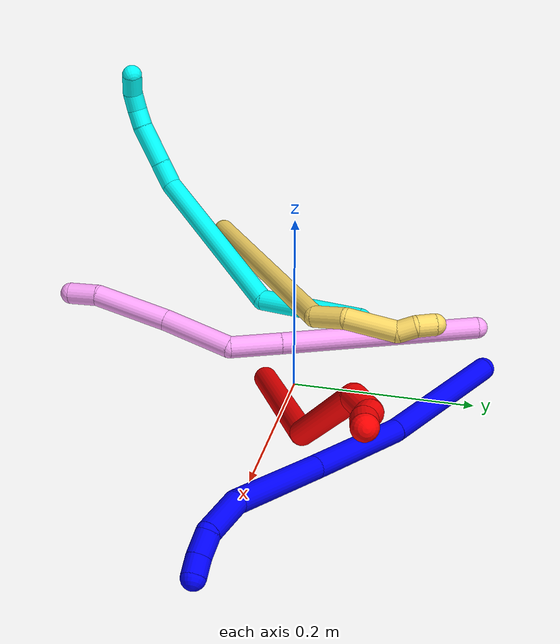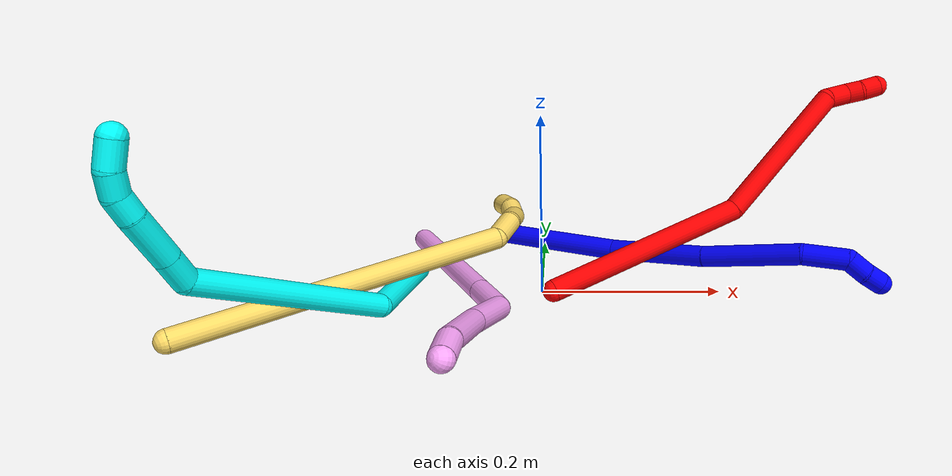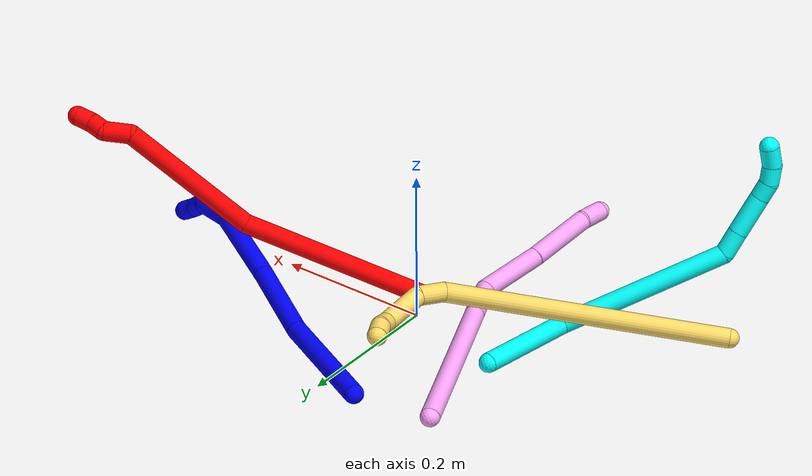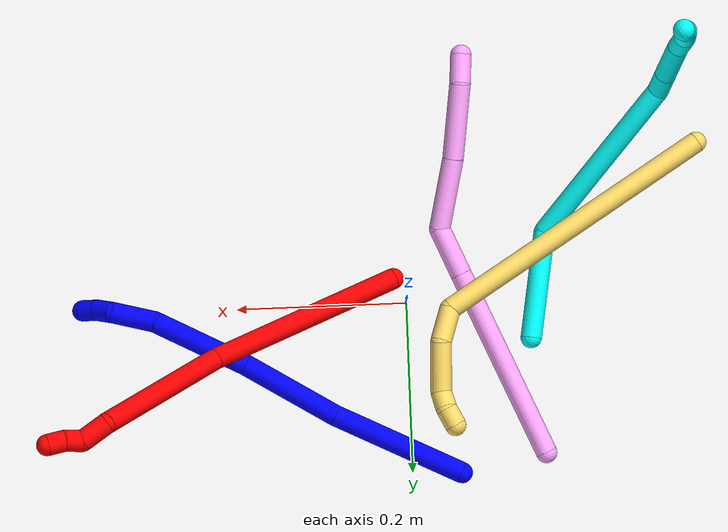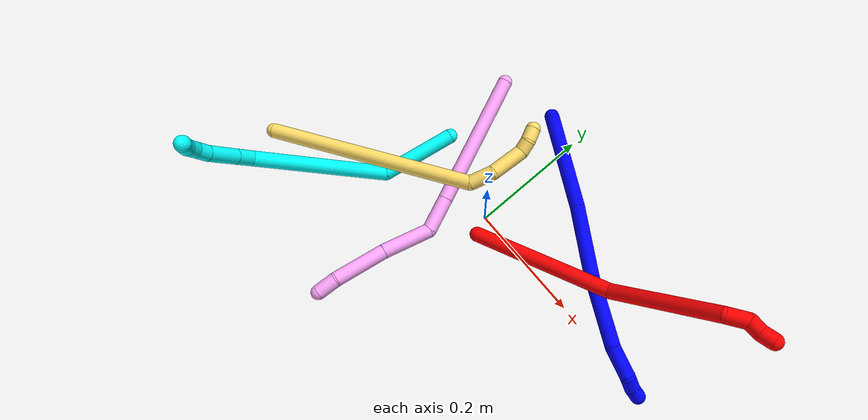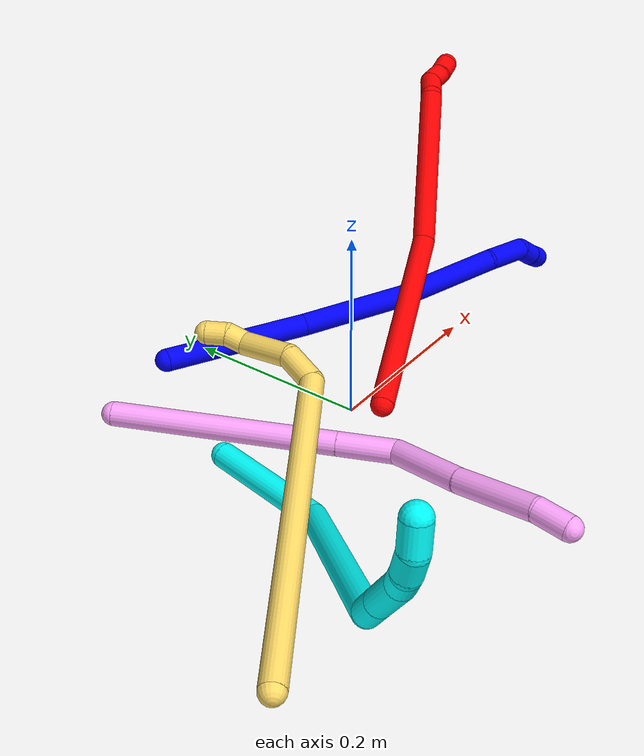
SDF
<sdf version="1.7">
 <world name="default">
  <plugin name="TubeGeneratorPlugin" filename="libtube_generator_plugin.so"/>
  <model name="photoneo_s_sensor">
   <static>1</static>
   <pose>0 0 2 1.57079 1.57079 3.14159</pose>
   <link name="link">
    <inertial><mass>0.1</mass></inertial>
    <sensor name="sensor" type="depth">
     <update_rate>30</update_rate>
     <camera>
      <horizontal_fov>1.22</horizontal_fov>
      <image><width>1920</width><height>1200</height><format>B8G8R8</format></image>
      <clip><near>0.1</near><far>4</far></clip>
      <depth_camera><output>points</output></depth_camera>
     </camera>
     <plugin name="camera_plugin" filename="libgazebo_ros_depth_camera.so">
      <baseline>0.2</baseline>
      <alwaysOn>1</alwaysOn>
      <updateRate>0.0</updateRate>
      <cameraName>camera_ir</cameraName>
      <imageTopicName>/camera/color/image_raw</imageTopicName>
      <cameraInfoTopicName>/camera/color/camera_info</cameraInfoTopicName>
      <depthImageTopicName>/camera/depth/image_raw</depthImageTopicName>
      <depthImageCameraInfoTopicName>/camera/depth/camera_info</depthImageCameraInfoTopicName>
      <pointCloudTopicName>/camera/depth/points</pointCloudTopicName>
      <frameName>fr_optical</frameName>
      <pointCloudCutoff>0.1</pointCloudCutoff>
      <pointCloudCutoffMax>2.0</pointCloudCutoffMax>
      <distortionK1>0</distortionK1>
      <distortionK2>0</distortionK2>
      <distortionK3>0</distortionK3>
      <distortionT1>0</distortionT1>
      <distortionT2>0</distortionT2>
      <CxPrime>0</CxPrime>
      <Cx>0</Cx>
      <Cy>0</Cy>
      <focalLength>0</focalLength>
      <hackBaseline>0</hackBaseline>
     </plugin>
    </sensor>
   </link>
  </model>
  <gravity>0 0 -9.8</gravity>
  <magnetic_field>6e-06 2.3e-05 -4.2e-05</magnetic_field>
  <atmosphere type="adiabatic"/>
  <physics name="default_physics" default="0" type="ode">
   <max_step_size>0.003</max_step_size>
   <real_time_factor>1</real_time_factor>
   <real_time_update_rate>1000</real_time_update_rate>
   <max_contacts>10000</max_contacts>
   <ode>
    <solver>
     <type>quick</type>
     <iters>100</iters>
     <sor>1.3</sor>
     <use_dynamic_moi_rescaling>0</use_dynamic_moi_rescaling>
    </solver>
    <constraints>
     <contact_max_correcting_vel>0</contact_max_correcting_vel>
     <contact_surface_layer>0.001</contact_surface_layer>
     <cfm>0</cfm>
     <erp>0.2</erp>
    </constraints>
   </ode>
  </physics>
  <scene><ambient>0.4 0.4 0.4 1</ambient><background>0.7 0.7 0.7 1</background><shadows>0</shadows></scene>
  <audio><device>default</device></audio>
  <spherical_coordinates>
   <surface_model>EARTH_WGS84</surface_model>
   <latitude_deg>0</latitude_deg>
   <longitude_deg>0</longitude_deg>
   <elevation>0</elevation>
   <heading_deg>0</heading_deg>
  </spherical_coordinates>
  <model name="bin">
   <static>1</static>
   <link name="bottom">
    <collision name="collision-bottom">
     <pose>0 0 -0.01 0 -0 0</pose>
     <geometry><box><size>0.8 0.6 0.02</size></box></geometry>
     <surface>
      <friction><ode><mu>100</mu><mu2>100</mu2></ode></friction>
      <contact><collide_bitmask>65535</collide_bitmask></contact>
     </surface>
    </collision>
   </link>
   <link name="west_wall">
    <collision name="collision-west_wall">
     <pose>-0.41 0 0.1 0 -0 0</pose>
     <geometry><box><size>0.02 0.6 0.2</size></box></geometry>
     <surface>
      <friction><ode><mu>100</mu><mu2>100</mu2></ode></friction>
      <contact><collide_bitmask>65535</collide_bitmask></contact>
     </surface>
    </collision>
   </link>
   <link name="east_wall">
    <collision name="collision-east_wall">
     <pose>0.41 0 0.1 0 -0 0</pose>
     <geometry><box><size>0.02 0.6 0.2</size></box></geometry>
     <surface>
      <friction><ode><mu>100</mu><mu2>100</mu2></ode></friction>
      <contact><collide_bitmask>65535</collide_bitmask></contact>
     </surface>
    </collision>
   </link>
   <link name="south_wall">
    <collision name="collision-south_wall">
     <pose>0 -0.31 0.1 0 -0 0</pose>
     <geometry><box><size>0.8 0.02 0.2</size></box></geometry>
     <surface>
      <friction><ode><mu>100</mu><mu2>100</mu2></ode></friction>
      <contact><collide_bitmask>65535</collide_bitmask></contact>
     </surface>
    </collision>
   </link>
   <link name="north_wall">
    <collision name="collision-north_wall">
     <pose>0 0.31 0.1 0 -0 0</pose>
     <geometry><box><size>0.8 0.02 0.2</size></box></geometry>
     <surface>
      <friction><ode><mu>100</mu><mu2>100</mu2></ode></friction>
      <contact><collide_bitmask>65535</collide_bitmask></contact>
     </surface>
    </collision>
   </link>
  </model>
  <model name="1">
   <static>0</static>
   <link name="1">
    <collision name="collision-cylinder-e_1_1_4">
     <pose>0.050832 -0.016941 0.061844 0.267375 0.670291 0.093613</pose>
     <geometry><cylinder><radius>0.0125</radius><length>0.163653</length></cylinder></geometry>
     <surface>
      <friction><ode><mu>1.16</mu><mu2>1.16</mu2><slip1>0</slip1><slip2>0</slip2></ode></friction>
      <contact><ode><kp>1e+06</kp><kd>1</kd><max_vel>0</max_vel><min_depth>0.001</min_depth></ode></contact>
     </surface>
    </collision>
    <visual name="visual-cylinder-e_1_1_4">
     <pose>0.050832 -0.016941 0.061844 0.267375 0.670291 0.093613</pose>
     <geometry><cylinder><radius>0.0125</radius><length>0.163653</length></cylinder></geometry>
     <material><ambient>0 0 1 1</ambient></material>
    </visual>
    <collision name="collision-cylinder-e_2_4_5">
     <pose>0.145249 -0.048036 0.16416 0.336415 0.793619 0.142076</pose>
     <geometry><cylinder><radius>0.0125</radius><length>0.122277</length></cylinder></geometry>
     <surface>
      <friction><ode><mu>1.16</mu><mu2>1.16</mu2><slip1>0</slip1><slip2>0</slip2></ode></friction>
      <contact><ode><kp>1e+06</kp><kd>1</kd><max_vel>0</max_vel><min_depth>0.001</min_depth></ode></contact>
     </surface>
    </collision>
    <visual name="visual-cylinder-e_2_4_5">
     <pose>0.145249 -0.048036 0.16416 0.336415 0.793619 0.142076</pose>
     <geometry><cylinder><radius>0.0125</radius><length>0.122277</length></cylinder></geometry>
     <material><ambient>0 0 1 1</ambient></material>
    </visual>
    <collision name="collision-cylinder-e_3_5_6">
     <pose>0.229191 -0.081729 0.242924 0.471839 0.753805 0.189739</pose>
     <geometry><cylinder><radius>0.0125</radius><length>0.117929</length></cylinder></geometry>
     <surface>
      <friction><ode><mu>1.16</mu><mu2>1.16</mu2><slip1>0</slip1><slip2>0</slip2></ode></friction>
      <contact><ode><kp>1e+06</kp><kd>1</kd><max_vel>0</max_vel><min_depth>0.001</min_depth></ode></contact>
     </surface>
    </collision>
    <visual name="visual-cylinder-e_3_5_6">
     <pose>0.229191 -0.081729 0.242924 0.471839 0.753805 0.189739</pose>
     <geometry><cylinder><radius>0.0125</radius><length>0.117929</length></cylinder></geometry>
     <material><ambient>0 0 1 1</ambient></material>
    </visual>
    <collision name="collision-cylinder-e_4_6_7">
     <pose>0.281128 -0.108694 0.302874 0.330286 0.468317 0.079467</pose>
     <geometry><cylinder><radius>0.0125</radius><length>0.051312</length></cylinder></geometry>
     <surface>
      <friction><ode><mu>1.16</mu><mu2>1.16</mu2><slip1>0</slip1><slip2>0</slip2></ode></friction>
      <contact><ode><kp>1e+06</kp><kd>1</kd><max_vel>0</max_vel><min_depth>0.001</min_depth></ode></contact>
     </surface>
    </collision>
    <visual name="visual-cylinder-e_4_6_7">
     <pose>0.281128 -0.108694 0.302874 0.330286 0.468317 0.079467</pose>
     <geometry><cylinder><radius>0.0125</radius><length>0.051312</length></cylinder></geometry>
     <material><ambient>0 0 1 1</ambient></material>
    </visual>
    <collision name="collision-cylinder-e_5_7_8">
     <pose>0.294417 -0.113699 0.336449 -0.200289 0.139481 -0.014038</pose>
     <geometry><cylinder><radius>0.0125</radius><length>0.024562</length></cylinder></geometry>
     <surface>
      <friction><ode><mu>1.16</mu><mu2>1.16</mu2><slip1>0</slip1><slip2>0</slip2></ode></friction>
      <contact><ode><kp>1e+06</kp><kd>1</kd><max_vel>0</max_vel><min_depth>0.001</min_depth></ode></contact>
     </surface>
    </collision>
    <visual name="visual-cylinder-e_5_7_8">
     <pose>0.294417 -0.113699 0.336449 -0.200289 0.139481 -0.014038</pose>
     <geometry><cylinder><radius>0.0125</radius><length>0.024562</length></cylinder></geometry>
     <material><ambient>0 0 1 1</ambient></material>
    </visual>
    <collision name="collision-cylinder-e_6_8_2">
     <pose>0.296526 -0.110819 0.358482 -0.045491 0.039722 -0.000904</pose>
     <geometry><cylinder><radius>0.0125</radius><length>0.020266</length></cylinder></geometry>
     <surface>
      <friction><ode><mu>1.16</mu><mu2>1.16</mu2><slip1>0</slip1><slip2>0</slip2></ode></friction>
      <contact><ode><kp>1e+06</kp><kd>1</kd><max_vel>0</max_vel><min_depth>0.001</min_depth></ode></contact>
     </surface>
    </collision>
    <visual name="visual-cylinder-e_6_8_2">
     <pose>0.296526 -0.110819 0.358482 -0.045491 0.039722 -0.000904</pose>
     <geometry><cylinder><radius>0.0125</radius><length>0.020266</length></cylinder></geometry>
     <material><ambient>0 0 1 1</ambient></material>
    </visual>
    <collision name="collision-sphere-2">
     <pose>0.296929 -0.110359 0.368596 0 -0 0</pose>
     <geometry><sphere><radius>0.0125</radius></sphere></geometry>
     <surface>
      <friction><ode><mu>1.16</mu><mu2>1.16</mu2><slip1>0</slip1><slip2>0</slip2></ode></friction>
      <contact><ode><kp>1e+06</kp><kd>1</kd><max_vel>0</max_vel><min_depth>0.001</min_depth></ode></contact>
     </surface>
    </collision>
    <visual name="visual-sphere-2">
     <pose>0.296929 -0.110359 0.368596 0 -0 0</pose>
     <geometry><sphere><radius>0.0125</radius></sphere></geometry>
     <material><ambient>0 0 1 1</ambient></material>
    </visual>
    <collision name="collision-sphere-4">
     <pose>0.101664 -0.033883 0.123689 0 -0 0</pose>
     <geometry><sphere><radius>0.0125</radius></sphere></geometry>
     <surface>
      <friction><ode><mu>1.16</mu><mu2>1.16</mu2><slip1>0</slip1><slip2>0</slip2></ode></friction>
      <contact><ode><kp>1e+06</kp><kd>1</kd><max_vel>0</max_vel><min_depth>0.001</min_depth></ode></contact>
     </surface>
    </collision>
    <visual name="visual-sphere-4">
     <pose>0.101664 -0.033883 0.123689 0 -0 0</pose>
     <geometry><sphere><radius>0.0125</radius></sphere></geometry>
     <material><ambient>0 0 1 1</ambient></material>
    </visual>
    <collision name="collision-sphere-1">
     <geometry><sphere><radius>0.0125</radius></sphere></geometry>
     <surface>
      <friction><ode><mu>1.16</mu><mu2>1.16</mu2><slip1>0</slip1><slip2>0</slip2></ode></friction>
      <contact><ode><kp>1e+06</kp><kd>1</kd><max_vel>0</max_vel><min_depth>0.001</min_depth></ode></contact>
     </surface>
    </collision>
    <visual name="visual-sphere-1">
     <geometry><sphere><radius>0.0125</radius></sphere></geometry>
     <material><ambient>0 0 1 1</ambient></material>
    </visual>
    <collision name="collision-sphere-8">
     <pose>0.296124 -0.11128 0.348367 0 -0 0</pose>
     <geometry><sphere><radius>0.0125</radius></sphere></geometry>
     <surface>
      <friction><ode><mu>1.16</mu><mu2>1.16</mu2><slip1>0</slip1><slip2>0</slip2></ode></friction>
      <contact><ode><kp>1e+06</kp><kd>1</kd><max_vel>0</max_vel><min_depth>0.001</min_depth></ode></contact>
     </surface>
    </collision>
    <visual name="visual-sphere-8">
     <pose>0.296124 -0.11128 0.348367 0 -0 0</pose>
     <geometry><sphere><radius>0.0125</radius></sphere></geometry>
     <material><ambient>0 0 1 1</ambient></material>
    </visual>
    <collision name="collision-sphere-5">
     <pose>0.188835 -0.062189 0.204631 0 -0 0</pose>
     <geometry><sphere><radius>0.0125</radius></sphere></geometry>
     <surface>
      <friction><ode><mu>1.16</mu><mu2>1.16</mu2><slip1>0</slip1><slip2>0</slip2></ode></friction>
      <contact><ode><kp>1e+06</kp><kd>1</kd><max_vel>0</max_vel><min_depth>0.001</min_depth></ode></contact>
     </surface>
    </collision>
    <visual name="visual-sphere-5">
     <pose>0.188835 -0.062189 0.204631 0 -0 0</pose>
     <geometry><sphere><radius>0.0125</radius></sphere></geometry>
     <material><ambient>0 0 1 1</ambient></material>
    </visual>
    <collision name="collision-sphere-6">
     <pose>0.269548 -0.101269 0.281218 0 -0 0</pose>
     <geometry><sphere><radius>0.0125</radius></sphere></geometry>
     <surface>
      <friction><ode><mu>1.16</mu><mu2>1.16</mu2><slip1>0</slip1><slip2>0</slip2></ode></friction>
      <contact><ode><kp>1e+06</kp><kd>1</kd><max_vel>0</max_vel><min_depth>0.001</min_depth></ode></contact>
     </surface>
    </collision>
    <visual name="visual-sphere-6">
     <pose>0.269548 -0.101269 0.281218 0 -0 0</pose>
     <geometry><sphere><radius>0.0125</radius></sphere></geometry>
     <material><ambient>0 0 1 1</ambient></material>
    </visual>
    <collision name="collision-sphere-7">
     <pose>0.292709 -0.116119 0.32453 0 -0 0</pose>
     <geometry><sphere><radius>0.0125</radius></sphere></geometry>
     <surface>
      <friction><ode><mu>1.16</mu><mu2>1.16</mu2><slip1>0</slip1><slip2>0</slip2></ode></friction>
      <contact><ode><kp>1e+06</kp><kd>1</kd><max_vel>0</max_vel><min_depth>0.001</min_depth></ode></contact>
     </surface>
    </collision>
    <visual name="visual-sphere-7">
     <pose>0.292709 -0.116119 0.32453 0 -0 0</pose>
     <geometry><sphere><radius>0.0125</radius></sphere></geometry>
     <material><ambient>0 0 1 1</ambient></material>
    </visual>
    <inertial>
     <pose>0.161548 -0.057801 0.179824 0 -0 0</pose>
     <mass>0.5</mass>
     <inertia>
      <ixx>0.000602</ixx>
      <ixy>0</ixy>
      <ixz>0</ixz>
      <iyy>0.000717</iyy>
      <iyz>0</iyz>
      <izz>-0.000254</izz>
     </inertia>
    </inertial>
   </link>
   <pose>-0.057908 0.20246 0.014566 -2.15735 -0.351328 -1.30279</pose>
  </model>
  <model name="2">
   <static>0</static>
   <link name="2">
    <collision name="collision-cylinder-e_1_1_4">
     <pose>0.018291 -0.003553 0.118124 0.030066 0.153562 0.002313</pose>
     <geometry><cylinder><radius>0.0125</radius><length>0.239169</length></cylinder></geometry>
     <surface>
      <friction><ode><mu>1.16</mu><mu2>1.16</mu2><slip1>0</slip1><slip2>0</slip2></ode></friction>
      <contact><ode><kp>1e+06</kp><kd>1</kd><max_vel>0</max_vel><min_depth>0.001</min_depth></ode></contact>
     </surface>
    </collision>
    <visual name="visual-cylinder-e_1_1_4">
     <pose>0.018291 -0.003553 0.118124 0.030066 0.153562 0.002313</pose>
     <geometry><cylinder><radius>0.0125</radius><length>0.239169</length></cylinder></geometry>
     <material><ambient>1 0 0 1</ambient></material>
    </visual>
    <collision name="collision-cylinder-e_2_4_5">
     <pose>0.019234 0.013646 0.325052 -0.22955 -0.187989 0.021735</pose>
     <geometry><cylinder><radius>0.0125</radius><length>0.185664</length></cylinder></geometry>
     <surface>
      <friction><ode><mu>1.16</mu><mu2>1.16</mu2><slip1>0</slip1><slip2>0</slip2></ode></friction>
      <contact><ode><kp>1e+06</kp><kd>1</kd><max_vel>0</max_vel><min_depth>0.001</min_depth></ode></contact>
     </surface>
    </collision>
    <visual name="visual-cylinder-e_2_4_5">
     <pose>0.019234 0.013646 0.325052 -0.22955 -0.187989 0.021735</pose>
     <geometry><cylinder><radius>0.0125</radius><length>0.185664</length></cylinder></geometry>
     <material><ambient>1 0 0 1</ambient></material>
    </visual>
    <collision name="collision-cylinder-e_3_5_6">
     <pose>0.008577 0.035776 0.4295 -0.087925 0.402775 -0.017961</pose>
     <geometry><cylinder><radius>0.0125</radius><length>0.034142</length></cylinder></geometry>
     <surface>
      <friction><ode><mu>1.16</mu><mu2>1.16</mu2><slip1>0</slip1><slip2>0</slip2></ode></friction>
      <contact><ode><kp>1e+06</kp><kd>1</kd><max_vel>0</max_vel><min_depth>0.001</min_depth></ode></contact>
     </surface>
    </collision>
    <visual name="visual-cylinder-e_3_5_6">
     <pose>0.008577 0.035776 0.4295 -0.087925 0.402775 -0.017961</pose>
     <geometry><cylinder><radius>0.0125</radius><length>0.034142</length></cylinder></geometry>
     <material><ambient>1 0 0 1</ambient></material>
    </visual>
    <collision name="collision-cylinder-e_4_6_7">
     <pose>0.015351 0.032772 0.45416 0.452554 0.008269 0.001904</pose>
     <geometry><cylinder><radius>0.0125</radius><length>0.020048</length></cylinder></geometry>
     <surface>
      <friction><ode><mu>1.16</mu><mu2>1.16</mu2><slip1>0</slip1><slip2>0</slip2></ode></friction>
      <contact><ode><kp>1e+06</kp><kd>1</kd><max_vel>0</max_vel><min_depth>0.001</min_depth></ode></contact>
     </surface>
    </collision>
    <visual name="visual-cylinder-e_4_6_7">
     <pose>0.015351 0.032772 0.45416 0.452554 0.008269 0.001904</pose>
     <geometry><cylinder><radius>0.0125</radius><length>0.020048</length></cylinder></geometry>
     <material><ambient>1 0 0 1</ambient></material>
    </visual>
    <collision name="collision-cylinder-e_5_7_2">
     <pose>0.016786 0.026134 0.473328 0.218526 0.129301 0.014204</pose>
     <geometry><cylinder><radius>0.0125</radius><length>0.020977</length></cylinder></geometry>
     <surface>
      <friction><ode><mu>1.16</mu><mu2>1.16</mu2><slip1>0</slip1><slip2>0</slip2></ode></friction>
      <contact><ode><kp>1e+06</kp><kd>1</kd><max_vel>0</max_vel><min_depth>0.001</min_depth></ode></contact>
     </surface>
    </collision>
    <visual name="visual-cylinder-e_5_7_2">
     <pose>0.016786 0.026134 0.473328 0.218526 0.129301 0.014204</pose>
     <geometry><cylinder><radius>0.0125</radius><length>0.020977</length></cylinder></geometry>
     <material><ambient>1 0 0 1</ambient></material>
    </visual>
    <collision name="collision-sphere-2">
     <pose>0.018139 0.023879 0.483481 0 -0 0</pose>
     <geometry><sphere><radius>0.0125</radius></sphere></geometry>
     <surface>
      <friction><ode><mu>1.16</mu><mu2>1.16</mu2><slip1>0</slip1><slip2>0</slip2></ode></friction>
      <contact><ode><kp>1e+06</kp><kd>1</kd><max_vel>0</max_vel><min_depth>0.001</min_depth></ode></contact>
     </surface>
    </collision>
    <visual name="visual-sphere-2">
     <pose>0.018139 0.023879 0.483481 0 -0 0</pose>
     <geometry><sphere><radius>0.0125</radius></sphere></geometry>
     <material><ambient>1 0 0 1</ambient></material>
    </visual>
    <collision name="collision-sphere-7">
     <pose>0.015434 0.028389 0.463174 0 -0 0</pose>
     <geometry><sphere><radius>0.0125</radius></sphere></geometry>
     <surface>
      <friction><ode><mu>1.16</mu><mu2>1.16</mu2><slip1>0</slip1><slip2>0</slip2></ode></friction>
      <contact><ode><kp>1e+06</kp><kd>1</kd><max_vel>0</max_vel><min_depth>0.001</min_depth></ode></contact>
     </surface>
    </collision>
    <visual name="visual-sphere-7">
     <pose>0.015434 0.028389 0.463174 0 -0 0</pose>
     <geometry><sphere><radius>0.0125</radius></sphere></geometry>
     <material><ambient>1 0 0 1</ambient></material>
    </visual>
    <collision name="collision-sphere-6">
     <pose>0.015268 0.037155 0.445145 0 -0 0</pose>
     <geometry><sphere><radius>0.0125</radius></sphere></geometry>
     <surface>
      <friction><ode><mu>1.16</mu><mu2>1.16</mu2><slip1>0</slip1><slip2>0</slip2></ode></friction>
      <contact><ode><kp>1e+06</kp><kd>1</kd><max_vel>0</max_vel><min_depth>0.001</min_depth></ode></contact>
     </surface>
    </collision>
    <visual name="visual-sphere-6">
     <pose>0.015268 0.037155 0.445145 0 -0 0</pose>
     <geometry><sphere><radius>0.0125</radius></sphere></geometry>
     <material><ambient>1 0 0 1</ambient></material>
    </visual>
    <collision name="collision-sphere-5">
     <pose>0.001885 0.034396 0.413856 0 -0 0</pose>
     <geometry><sphere><radius>0.0125</radius></sphere></geometry>
     <surface>
      <friction><ode><mu>1.16</mu><mu2>1.16</mu2><slip1>0</slip1><slip2>0</slip2></ode></friction>
      <contact><ode><kp>1e+06</kp><kd>1</kd><max_vel>0</max_vel><min_depth>0.001</min_depth></ode></contact>
     </surface>
    </collision>
    <visual name="visual-sphere-5">
     <pose>0.001885 0.034396 0.413856 0 -0 0</pose>
     <geometry><sphere><radius>0.0125</radius></sphere></geometry>
     <material><ambient>1 0 0 1</ambient></material>
    </visual>
    <collision name="collision-sphere-1">
     <geometry><sphere><radius>0.0125</radius></sphere></geometry>
     <surface>
      <friction><ode><mu>1.16</mu><mu2>1.16</mu2><slip1>0</slip1><slip2>0</slip2></ode></friction>
      <contact><ode><kp>1e+06</kp><kd>1</kd><max_vel>0</max_vel><min_depth>0.001</min_depth></ode></contact>
     </surface>
    </collision>
    <visual name="visual-sphere-1">
     <geometry><sphere><radius>0.0125</radius></sphere></geometry>
     <material><ambient>1 0 0 1</ambient></material>
    </visual>
    <collision name="collision-sphere-4">
     <pose>0.036583 -0.007105 0.236247 0 -0 0</pose>
     <geometry><sphere><radius>0.0125</radius></sphere></geometry>
     <surface>
      <friction><ode><mu>1.16</mu><mu2>1.16</mu2><slip1>0</slip1><slip2>0</slip2></ode></friction>
      <contact><ode><kp>1e+06</kp><kd>1</kd><max_vel>0</max_vel><min_depth>0.001</min_depth></ode></contact>
     </surface>
    </collision>
    <visual name="visual-sphere-4">
     <pose>0.036583 -0.007105 0.236247 0 -0 0</pose>
     <geometry><sphere><radius>0.0125</radius></sphere></geometry>
     <material><ambient>1 0 0 1</ambient></material>
    </visual>
    <inertial>
     <pose>0.017797 0.008221 0.2446 0 -0 0</pose>
     <mass>0.5</mass>
     <inertia>
      <ixx>0.00169</ixx>
      <ixy>0</ixy>
      <ixz>0</ixz>
      <iyy>0.001699</iyy>
      <iyz>0</iyz>
      <izz>-0.000125</izz>
     </inertia>
    </inertial>
   </link>
   <pose>0.013831 -0.029254 0.011497 0.687492 0.973477 1.14587</pose>
  </model>
  <model name="3">
   <static>0</static>
   <link name="3">
    <collision name="collision-cylinder-e_1_1_4">
     <pose>-0.037632 -0.035554 0.036331 0.774582 -0.63727 -0.2675</pose>
     <geometry><cylinder><radius>0.0125</radius><length>0.126495</length></cylinder></geometry>
     <surface>
      <friction><ode><mu>1.16</mu><mu2>1.16</mu2><slip1>0</slip1><slip2>0</slip2></ode></friction>
      <contact><ode><kp>1e+06</kp><kd>1</kd><max_vel>0</max_vel><min_depth>0.001</min_depth></ode></contact>
     </surface>
    </collision>
    <visual name="visual-cylinder-e_1_1_4">
     <pose>-0.037632 -0.035554 0.036331 0.774582 -0.63727 -0.2675</pose>
     <geometry><cylinder><radius>0.0125</radius><length>0.126495</length></cylinder></geometry>
     <material><ambient>0.003922 1 0.996078 1</ambient></material>
    </visual>
    <collision name="collision-cylinder-e_2_4_5">
     <pose>-0.098563 -0.093715 0.177279 0.212823 -0.214333 -0.022981</pose>
     <geometry><cylinder><radius>0.0125</radius><length>0.219075</length></cylinder></geometry>
     <surface>
      <friction><ode><mu>1.16</mu><mu2>1.16</mu2><slip1>0</slip1><slip2>0</slip2></ode></friction>
      <contact><ode><kp>1e+06</kp><kd>1</kd><max_vel>0</max_vel><min_depth>0.001</min_depth></ode></contact>
     </surface>
    </collision>
    <visual name="visual-cylinder-e_2_4_5">
     <pose>-0.098563 -0.093715 0.177279 0.212823 -0.214333 -0.022981</pose>
     <geometry><cylinder><radius>0.0125</radius><length>0.219075</length></cylinder></geometry>
     <material><ambient>0.003922 1 0.996078 1</ambient></material>
    </visual>
    <collision name="collision-cylinder-e_3_5_6">
     <pose>-0.116619 -0.12408 0.294704 0.54457 0.33668 0.094835</pose>
     <geometry><cylinder><radius>0.0125</radius><length>0.031732</length></cylinder></geometry>
     <surface>
      <friction><ode><mu>1.16</mu><mu2>1.16</mu2><slip1>0</slip1><slip2>0</slip2></ode></friction>
      <contact><ode><kp>1e+06</kp><kd>1</kd><max_vel>0</max_vel><min_depth>0.001</min_depth></ode></contact>
     </surface>
    </collision>
    <visual name="visual-cylinder-e_3_5_6">
     <pose>-0.116619 -0.12408 0.294704 0.54457 0.33668 0.094835</pose>
     <geometry><cylinder><radius>0.0125</radius><length>0.031732</length></cylinder></geometry>
     <material><ambient>0.003922 1 0.996078 1</ambient></material>
    </visual>
    <collision name="collision-cylinder-e_4_6_7">
     <pose>-0.103077 -0.144258 0.328456 0.535304 0.328557 0.090858</pose>
     <geometry><cylinder><radius>0.0125</radius><length>0.05145</length></cylinder></geometry>
     <surface>
      <friction><ode><mu>1.16</mu><mu2>1.16</mu2><slip1>0</slip1><slip2>0</slip2></ode></friction>
      <contact><ode><kp>1e+06</kp><kd>1</kd><max_vel>0</max_vel><min_depth>0.001</min_depth></ode></contact>
     </surface>
    </collision>
    <visual name="visual-cylinder-e_4_6_7">
     <pose>-0.103077 -0.144258 0.328456 0.535304 0.328557 0.090858</pose>
     <geometry><cylinder><radius>0.0125</radius><length>0.05145</length></cylinder></geometry>
     <material><ambient>0.003922 1 0.996078 1</ambient></material>
    </visual>
    <collision name="collision-cylinder-e_5_7_8">
     <pose>-0.089961 -0.160942 0.358616 0.433258 0.44277 0.098989</pose>
     <geometry><cylinder><radius>0.0125</radius><length>0.022476</length></cylinder></geometry>
     <surface>
      <friction><ode><mu>1.16</mu><mu2>1.16</mu2><slip1>0</slip1><slip2>0</slip2></ode></friction>
      <contact><ode><kp>1e+06</kp><kd>1</kd><max_vel>0</max_vel><min_depth>0.001</min_depth></ode></contact>
     </surface>
    </collision>
    <visual name="visual-cylinder-e_5_7_8">
     <pose>-0.089961 -0.160942 0.358616 0.433258 0.44277 0.098989</pose>
     <geometry><cylinder><radius>0.0125</radius><length>0.022476</length></cylinder></geometry>
     <material><ambient>0.003922 1 0.996078 1</ambient></material>
    </visual>
    <collision name="collision-cylinder-e_6_8_9">
     <pose>-0.077754 -0.170912 0.374307 0.722417 0.708241 0.277541</pose>
     <geometry><cylinder><radius>0.0125</radius><length>0.022727</length></cylinder></geometry>
     <surface>
      <friction><ode><mu>1.16</mu><mu2>1.16</mu2><slip1>0</slip1><slip2>0</slip2></ode></friction>
      <contact><ode><kp>1e+06</kp><kd>1</kd><max_vel>0</max_vel><min_depth>0.001</min_depth></ode></contact>
     </surface>
    </collision>
    <visual name="visual-cylinder-e_6_8_9">
     <pose>-0.077754 -0.170912 0.374307 0.722417 0.708241 0.277541</pose>
     <geometry><cylinder><radius>0.0125</radius><length>0.022727</length></cylinder></geometry>
     <material><ambient>0.003922 1 0.996078 1</ambient></material>
    </visual>
    <collision name="collision-cylinder-e_7_9_2">
     <pose>-0.059273 -0.182185 0.384735 0.953251 1.01891 0.561641</pose>
     <geometry><cylinder><radius>0.0125</radius><length>0.026044</length></cylinder></geometry>
     <surface>
      <friction><ode><mu>1.16</mu><mu2>1.16</mu2><slip1>0</slip1><slip2>0</slip2></ode></friction>
      <contact><ode><kp>1e+06</kp><kd>1</kd><max_vel>0</max_vel><min_depth>0.001</min_depth></ode></contact>
     </surface>
    </collision>
    <visual name="visual-cylinder-e_7_9_2">
     <pose>-0.059273 -0.182185 0.384735 0.953251 1.01891 0.561641</pose>
     <geometry><cylinder><radius>0.0125</radius><length>0.026044</length></cylinder></geometry>
     <material><ambient>0.003922 1 0.996078 1</ambient></material>
    </visual>
    <collision name="collision-sphere-2">
     <pose>-0.048185 -0.187751 0.388688 0 -0 0</pose>
     <geometry><sphere><radius>0.0125</radius></sphere></geometry>
     <surface>
      <friction><ode><mu>1.16</mu><mu2>1.16</mu2><slip1>0</slip1><slip2>0</slip2></ode></friction>
      <contact><ode><kp>1e+06</kp><kd>1</kd><max_vel>0</max_vel><min_depth>0.001</min_depth></ode></contact>
     </surface>
    </collision>
    <visual name="visual-sphere-2">
     <pose>-0.048185 -0.187751 0.388688 0 -0 0</pose>
     <geometry><sphere><radius>0.0125</radius></sphere></geometry>
     <material><ambient>0.003922 1 0.996078 1</ambient></material>
    </visual>
    <collision name="collision-sphere-9">
     <pose>-0.070362 -0.176618 0.380782 0 -0 0</pose>
     <geometry><sphere><radius>0.0125</radius></sphere></geometry>
     <surface>
      <friction><ode><mu>1.16</mu><mu2>1.16</mu2><slip1>0</slip1><slip2>0</slip2></ode></friction>
      <contact><ode><kp>1e+06</kp><kd>1</kd><max_vel>0</max_vel><min_depth>0.001</min_depth></ode></contact>
     </surface>
    </collision>
    <visual name="visual-sphere-9">
     <pose>-0.070362 -0.176618 0.380782 0 -0 0</pose>
     <geometry><sphere><radius>0.0125</radius></sphere></geometry>
     <material><ambient>0.003922 1 0.996078 1</ambient></material>
    </visual>
    <collision name="collision-sphere-4">
     <pose>-0.075265 -0.071107 0.072663 0 -0 0</pose>
     <geometry><sphere><radius>0.0125</radius></sphere></geometry>
     <surface>
      <friction><ode><mu>1.16</mu><mu2>1.16</mu2><slip1>0</slip1><slip2>0</slip2></ode></friction>
      <contact><ode><kp>1e+06</kp><kd>1</kd><max_vel>0</max_vel><min_depth>0.001</min_depth></ode></contact>
     </surface>
    </collision>
    <visual name="visual-sphere-4">
     <pose>-0.075265 -0.071107 0.072663 0 -0 0</pose>
     <geometry><sphere><radius>0.0125</radius></sphere></geometry>
     <material><ambient>0.003922 1 0.996078 1</ambient></material>
    </visual>
    <collision name="collision-sphere-1">
     <geometry><sphere><radius>0.0125</radius></sphere></geometry>
     <surface>
      <friction><ode><mu>1.16</mu><mu2>1.16</mu2><slip1>0</slip1><slip2>0</slip2></ode></friction>
      <contact><ode><kp>1e+06</kp><kd>1</kd><max_vel>0</max_vel><min_depth>0.001</min_depth></ode></contact>
     </surface>
    </collision>
    <visual name="visual-sphere-1">
     <geometry><sphere><radius>0.0125</radius></sphere></geometry>
     <material><ambient>0.003922 1 0.996078 1</ambient></material>
    </visual>
    <collision name="collision-sphere-8">
     <pose>-0.085146 -0.165205 0.367832 0 -0 0</pose>
     <geometry><sphere><radius>0.0125</radius></sphere></geometry>
     <surface>
      <friction><ode><mu>1.16</mu><mu2>1.16</mu2><slip1>0</slip1><slip2>0</slip2></ode></friction>
      <contact><ode><kp>1e+06</kp><kd>1</kd><max_vel>0</max_vel><min_depth>0.001</min_depth></ode></contact>
     </surface>
    </collision>
    <visual name="visual-sphere-8">
     <pose>-0.085146 -0.165205 0.367832 0 -0 0</pose>
     <geometry><sphere><radius>0.0125</radius></sphere></geometry>
     <material><ambient>0.003922 1 0.996078 1</ambient></material>
    </visual>
    <collision name="collision-sphere-5">
     <pose>-0.121861 -0.116322 0.281895 0 -0 0</pose>
     <geometry><sphere><radius>0.0125</radius></sphere></geometry>
     <surface>
      <friction><ode><mu>1.16</mu><mu2>1.16</mu2><slip1>0</slip1><slip2>0</slip2></ode></friction>
      <contact><ode><kp>1e+06</kp><kd>1</kd><max_vel>0</max_vel><min_depth>0.001</min_depth></ode></contact>
     </surface>
    </collision>
    <visual name="visual-sphere-5">
     <pose>-0.121861 -0.116322 0.281895 0 -0 0</pose>
     <geometry><sphere><radius>0.0125</radius></sphere></geometry>
     <material><ambient>0.003922 1 0.996078 1</ambient></material>
    </visual>
    <collision name="collision-sphere-6">
     <pose>-0.111378 -0.131838 0.307513 0 -0 0</pose>
     <geometry><sphere><radius>0.0125</radius></sphere></geometry>
     <surface>
      <friction><ode><mu>1.16</mu><mu2>1.16</mu2><slip1>0</slip1><slip2>0</slip2></ode></friction>
      <contact><ode><kp>1e+06</kp><kd>1</kd><max_vel>0</max_vel><min_depth>0.001</min_depth></ode></contact>
     </surface>
    </collision>
    <visual name="visual-sphere-6">
     <pose>-0.111378 -0.131838 0.307513 0 -0 0</pose>
     <geometry><sphere><radius>0.0125</radius></sphere></geometry>
     <material><ambient>0.003922 1 0.996078 1</ambient></material>
    </visual>
    <collision name="collision-sphere-7">
     <pose>-0.094776 -0.156679 0.349399 0 -0 0</pose>
     <geometry><sphere><radius>0.0125</radius></sphere></geometry>
     <surface>
      <friction><ode><mu>1.16</mu><mu2>1.16</mu2><slip1>0</slip1><slip2>0</slip2></ode></friction>
      <contact><ode><kp>1e+06</kp><kd>1</kd><max_vel>0</max_vel><min_depth>0.001</min_depth></ode></contact>
     </surface>
    </collision>
    <visual name="visual-sphere-7">
     <pose>-0.094776 -0.156679 0.349399 0 -0 0</pose>
     <geometry><sphere><radius>0.0125</radius></sphere></geometry>
     <material><ambient>0.003922 1 0.996078 1</ambient></material>
    </visual>
    <inertial>
     <pose>-0.08138 -0.097268 0.192543 0 -0 0</pose>
     <mass>0.5</mass>
     <inertia>
      <ixx>0.000961</ixx>
      <ixy>0</ixy>
      <ixz>0</ixz>
      <iyy>0.000956</iyy>
      <iyz>0</iyz>
      <izz>0.000603</izz>
     </inertia>
    </inertial>
   </link>
   <pose>-0.145873 0.046841 0.012614 -0.653537 -0.934081 1.308</pose>
  </model>
  <model name="4">
   <static>0</static>
   <link name="4">
    <collision name="collision-cylinder-e_1_1_4">
     <pose>0.043495 -0.096795 0.047393 1.11549 0.383584 0.241088</pose>
     <geometry><cylinder><radius>0.0125</radius><length>0.232442</length></cylinder></geometry>
     <surface>
      <friction><ode><mu>1.16</mu><mu2>1.16</mu2><slip1>0</slip1><slip2>0</slip2></ode></friction>
      <contact><ode><kp>1e+06</kp><kd>1</kd><max_vel>0</max_vel><min_depth>0.001</min_depth></ode></contact>
     </surface>
    </collision>
    <visual name="visual-cylinder-e_1_1_4">
     <pose>0.043495 -0.096795 0.047393 1.11549 0.383584 0.241088</pose>
     <geometry><cylinder><radius>0.0125</radius><length>0.232442</length></cylinder></geometry>
     <material><ambient>1 0.65098 0.996078 1</ambient></material>
    </visual>
    <collision name="collision-cylinder-e_2_4_5">
     <pose>0.098129 -0.21841 0.107113 1.10979 0.382189 0.238691</pose>
     <geometry><cylinder><radius>0.0125</radius><length>0.059734</length></cylinder></geometry>
     <surface>
      <friction><ode><mu>1.16</mu><mu2>1.16</mu2><slip1>0</slip1><slip2>0</slip2></ode></friction>
      <contact><ode><kp>1e+06</kp><kd>1</kd><max_vel>0</max_vel><min_depth>0.001</min_depth></ode></contact>
     </surface>
    </collision>
    <visual name="visual-cylinder-e_2_4_5">
     <pose>0.098129 -0.21841 0.107113 1.10979 0.382189 0.238691</pose>
     <geometry><cylinder><radius>0.0125</radius><length>0.059734</length></cylinder></geometry>
     <material><ambient>1 0.65098 0.996078 1</ambient></material>
    </visual>
    <collision name="collision-cylinder-e_3_5_6">
     <pose>0.114872 -0.262826 0.156512 0.486282 0.132842 0.032997</pose>
     <geometry><cylinder><radius>0.0125</radius><length>0.084611</length></cylinder></geometry>
     <surface>
      <friction><ode><mu>1.16</mu><mu2>1.16</mu2><slip1>0</slip1><slip2>0</slip2></ode></friction>
      <contact><ode><kp>1e+06</kp><kd>1</kd><max_vel>0</max_vel><min_depth>0.001</min_depth></ode></contact>
     </surface>
    </collision>
    <visual name="visual-cylinder-e_3_5_6">
     <pose>0.114872 -0.262826 0.156512 0.486282 0.132842 0.032997</pose>
     <geometry><cylinder><radius>0.0125</radius><length>0.084611</length></cylinder></geometry>
     <material><ambient>1 0.65098 0.996078 1</ambient></material>
    </visual>
    <collision name="collision-cylinder-e_4_6_7">
     <pose>0.129089 -0.30546 0.230475 0.558223 0.195525 0.0562</pose>
     <geometry><cylinder><radius>0.0125</radius><length>0.088677</length></cylinder></geometry>
     <surface>
      <friction><ode><mu>1.16</mu><mu2>1.16</mu2><slip1>0</slip1><slip2>0</slip2></ode></friction>
      <contact><ode><kp>1e+06</kp><kd>1</kd><max_vel>0</max_vel><min_depth>0.001</min_depth></ode></contact>
     </surface>
    </collision>
    <visual name="visual-cylinder-e_4_6_7">
     <pose>0.129089 -0.30546 0.230475 0.558223 0.195525 0.0562</pose>
     <geometry><cylinder><radius>0.0125</radius><length>0.088677</length></cylinder></geometry>
     <material><ambient>1 0.65098 0.996078 1</ambient></material>
    </visual>
    <collision name="collision-cylinder-e_5_7_2">
     <pose>0.138322 -0.340493 0.279773 0.768527 0.035806 0.01448</pose>
     <geometry><cylinder><radius>0.0125</radius><length>0.034537</length></cylinder></geometry>
     <surface>
      <friction><ode><mu>1.16</mu><mu2>1.16</mu2><slip1>0</slip1><slip2>0</slip2></ode></friction>
      <contact><ode><kp>1e+06</kp><kd>1</kd><max_vel>0</max_vel><min_depth>0.001</min_depth></ode></contact>
     </surface>
    </collision>
    <visual name="visual-cylinder-e_5_7_2">
     <pose>0.138322 -0.340493 0.279773 0.768527 0.035806 0.01448</pose>
     <geometry><cylinder><radius>0.0125</radius><length>0.034537</length></cylinder></geometry>
     <material><ambient>1 0.65098 0.996078 1</ambient></material>
    </visual>
    <collision name="collision-sphere-2">
     <pose>0.13894 -0.352489 0.29218 0 -0 0</pose>
     <geometry><sphere><radius>0.0125</radius></sphere></geometry>
     <surface>
      <friction><ode><mu>1.16</mu><mu2>1.16</mu2><slip1>0</slip1><slip2>0</slip2></ode></friction>
      <contact><ode><kp>1e+06</kp><kd>1</kd><max_vel>0</max_vel><min_depth>0.001</min_depth></ode></contact>
     </surface>
    </collision>
    <visual name="visual-sphere-2">
     <pose>0.13894 -0.352489 0.29218 0 -0 0</pose>
     <geometry><sphere><radius>0.0125</radius></sphere></geometry>
     <material><ambient>1 0.65098 0.996078 1</ambient></material>
    </visual>
    <collision name="collision-sphere-7">
     <pose>0.137703 -0.328498 0.267366 0 -0 0</pose>
     <geometry><sphere><radius>0.0125</radius></sphere></geometry>
     <surface>
      <friction><ode><mu>1.16</mu><mu2>1.16</mu2><slip1>0</slip1><slip2>0</slip2></ode></friction>
      <contact><ode><kp>1e+06</kp><kd>1</kd><max_vel>0</max_vel><min_depth>0.001</min_depth></ode></contact>
     </surface>
    </collision>
    <visual name="visual-sphere-7">
     <pose>0.137703 -0.328498 0.267366 0 -0 0</pose>
     <geometry><sphere><radius>0.0125</radius></sphere></geometry>
     <material><ambient>1 0.65098 0.996078 1</ambient></material>
    </visual>
    <collision name="collision-sphere-6">
     <pose>0.120475 -0.282423 0.193584 0 -0 0</pose>
     <geometry><sphere><radius>0.0125</radius></sphere></geometry>
     <surface>
      <friction><ode><mu>1.16</mu><mu2>1.16</mu2><slip1>0</slip1><slip2>0</slip2></ode></friction>
      <contact><ode><kp>1e+06</kp><kd>1</kd><max_vel>0</max_vel><min_depth>0.001</min_depth></ode></contact>
     </surface>
    </collision>
    <visual name="visual-sphere-6">
     <pose>0.120475 -0.282423 0.193584 0 -0 0</pose>
     <geometry><sphere><radius>0.0125</radius></sphere></geometry>
     <material><ambient>1 0.65098 0.996078 1</ambient></material>
    </visual>
    <collision name="collision-sphere-5">
     <pose>0.109268 -0.243229 0.119441 0 -0 0</pose>
     <geometry><sphere><radius>0.0125</radius></sphere></geometry>
     <surface>
      <friction><ode><mu>1.16</mu><mu2>1.16</mu2><slip1>0</slip1><slip2>0</slip2></ode></friction>
      <contact><ode><kp>1e+06</kp><kd>1</kd><max_vel>0</max_vel><min_depth>0.001</min_depth></ode></contact>
     </surface>
    </collision>
    <visual name="visual-sphere-5">
     <pose>0.109268 -0.243229 0.119441 0 -0 0</pose>
     <geometry><sphere><radius>0.0125</radius></sphere></geometry>
     <material><ambient>1 0.65098 0.996078 1</ambient></material>
    </visual>
    <collision name="collision-sphere-1">
     <geometry><sphere><radius>0.0125</radius></sphere></geometry>
     <surface>
      <friction><ode><mu>1.16</mu><mu2>1.16</mu2><slip1>0</slip1><slip2>0</slip2></ode></friction>
      <contact><ode><kp>1e+06</kp><kd>1</kd><max_vel>0</max_vel><min_depth>0.001</min_depth></ode></contact>
     </surface>
    </collision>
    <visual name="visual-sphere-1">
     <geometry><sphere><radius>0.0125</radius></sphere></geometry>
     <material><ambient>1 0.65098 0.996078 1</ambient></material>
    </visual>
    <collision name="collision-sphere-4">
     <pose>0.08699 -0.193591 0.094785 0 -0 0</pose>
     <geometry><sphere><radius>0.0125</radius></sphere></geometry>
     <surface>
      <friction><ode><mu>1.16</mu><mu2>1.16</mu2><slip1>0</slip1><slip2>0</slip2></ode></friction>
      <contact><ode><kp>1e+06</kp><kd>1</kd><max_vel>0</max_vel><min_depth>0.001</min_depth></ode></contact>
     </surface>
    </collision>
    <visual name="visual-sphere-4">
     <pose>0.08699 -0.193591 0.094785 0 -0 0</pose>
     <geometry><sphere><radius>0.0125</radius></sphere></geometry>
     <material><ambient>1 0.65098 0.996078 1</ambient></material>
    </visual>
    <inertial>
     <pose>0.083831 -0.193261 0.121515 0 -0 0</pose>
     <mass>0.5</mass>
     <inertia>
      <ixx>0.001341</ixx>
      <ixy>0</ixy>
      <ixz>0</ixz>
      <iyy>0.000865</iyy>
      <iyz>0</iyz>
      <izz>0.000557</izz>
     </inertia>
    </inertial>
   </link>
   <pose>-0.158311 0.182788 0.011496 0.962348 -0.881446 -0.219713</pose>
  </model>
  <model name="5">
   <static>0</static>
   <link name="5">
    <collision name="collision-cylinder-e_1_1_4">
     <pose>-0.008127 -0.016527 -0.177203 3.0486 -0.045633 -0.911909</pose>
     <geometry><cylinder><radius>0.0125</radius><length>0.356315</length></cylinder></geometry>
     <surface>
      <friction><ode><mu>1.16</mu><mu2>1.16</mu2><slip1>0</slip1><slip2>0</slip2></ode></friction>
      <contact><ode><kp>1e+06</kp><kd>1</kd><max_vel>0</max_vel><min_depth>0.001</min_depth></ode></contact>
     </surface>
    </collision>
    <visual name="visual-cylinder-e_1_1_4">
     <pose>-0.008127 -0.016527 -0.177203 3.0486 -0.045633 -0.911909</pose>
     <geometry><cylinder><radius>0.0125</radius><length>0.356315</length></cylinder></geometry>
     <material><ambient>1 0.858824 0.4 1</ambient></material>
    </visual>
    <collision name="collision-cylinder-e_2_4_5">
     <pose>-0.013923 -0.021913 -0.371411 -2.56156 0.114187 -0.378456</pose>
     <geometry><cylinder><radius>0.0125</radius><length>0.040925</length></cylinder></geometry>
     <surface>
      <friction><ode><mu>1.16</mu><mu2>1.16</mu2><slip1>0</slip1><slip2>0</slip2></ode></friction>
      <contact><ode><kp>1e+06</kp><kd>1</kd><max_vel>0</max_vel><min_depth>0.001</min_depth></ode></contact>
     </surface>
    </collision>
    <visual name="visual-cylinder-e_2_4_5">
     <pose>-0.013923 -0.021913 -0.371411 -2.56156 0.114187 -0.378456</pose>
     <geometry><cylinder><radius>0.0125</radius><length>0.040925</length></cylinder></geometry>
     <material><ambient>1 0.858824 0.4 1</ambient></material>
    </visual>
    <collision name="collision-cylinder-e_3_5_6">
     <pose>-0.017035 0.012534 -0.406235 -2.22358 -0.183456 0.368043</pose>
     <geometry><cylinder><radius>0.0125</radius><length>0.059677</length></cylinder></geometry>
     <surface>
      <friction><ode><mu>1.16</mu><mu2>1.16</mu2><slip1>0</slip1><slip2>0</slip2></ode></friction>
      <contact><ode><kp>1e+06</kp><kd>1</kd><max_vel>0</max_vel><min_depth>0.001</min_depth></ode></contact>
     </surface>
    </collision>
    <visual name="visual-cylinder-e_3_5_6">
     <pose>-0.017035 0.012534 -0.406235 -2.22358 -0.183456 0.368043</pose>
     <geometry><cylinder><radius>0.0125</radius><length>0.059677</length></cylinder></geometry>
     <material><ambient>1 0.858824 0.4 1</ambient></material>
    </visual>
    <collision name="collision-cylinder-e_4_6_7">
     <pose>-0.01913 0.044812 -0.428345 -2.01688 0.324736 -0.508581</pose>
     <geometry><cylinder><radius>0.0125</radius><length>0.020988</length></cylinder></geometry>
     <surface>
      <friction><ode><mu>1.16</mu><mu2>1.16</mu2><slip1>0</slip1><slip2>0</slip2></ode></friction>
      <contact><ode><kp>1e+06</kp><kd>1</kd><max_vel>0</max_vel><min_depth>0.001</min_depth></ode></contact>
     </surface>
    </collision>
    <visual name="visual-cylinder-e_4_6_7">
     <pose>-0.01913 0.044812 -0.428345 -2.01688 0.324736 -0.508581</pose>
     <geometry><cylinder><radius>0.0125</radius><length>0.020988</length></cylinder></geometry>
     <material><ambient>1 0.858824 0.4 1</ambient></material>
    </visual>
    <collision name="collision-cylinder-e_5_7_2">
     <pose>-0.015393 0.064632 -0.434694 -1.75827 0.035213 -0.042519</pose>
     <geometry><cylinder><radius>0.0125</radius><length>0.022095</length></cylinder></geometry>
     <surface>
      <friction><ode><mu>1.16</mu><mu2>1.16</mu2><slip1>0</slip1><slip2>0</slip2></ode></friction>
      <contact><ode><kp>1e+06</kp><kd>1</kd><max_vel>0</max_vel><min_depth>0.001</min_depth></ode></contact>
     </surface>
    </collision>
    <visual name="visual-cylinder-e_5_7_2">
     <pose>-0.015393 0.064632 -0.434694 -1.75827 0.035213 -0.042519</pose>
     <geometry><cylinder><radius>0.0125</radius><length>0.022095</length></cylinder></geometry>
     <material><ambient>1 0.858824 0.4 1</ambient></material>
    </visual>
    <collision name="collision-sphere-2">
     <pose>-0.015004 0.075479 -0.436751 0 -0 0</pose>
     <geometry><sphere><radius>0.0125</radius></sphere></geometry>
     <surface>
      <friction><ode><mu>1.16</mu><mu2>1.16</mu2><slip1>0</slip1><slip2>0</slip2></ode></friction>
      <contact><ode><kp>1e+06</kp><kd>1</kd><max_vel>0</max_vel><min_depth>0.001</min_depth></ode></contact>
     </surface>
    </collision>
    <visual name="visual-sphere-2">
     <pose>-0.015004 0.075479 -0.436751 0 -0 0</pose>
     <geometry><sphere><radius>0.0125</radius></sphere></geometry>
     <material><ambient>1 0.858824 0.4 1</ambient></material>
    </visual>
    <collision name="collision-sphere-7">
     <pose>-0.015782 0.053785 -0.432636 0 -0 0</pose>
     <geometry><sphere><radius>0.0125</radius></sphere></geometry>
     <surface>
      <friction><ode><mu>1.16</mu><mu2>1.16</mu2><slip1>0</slip1><slip2>0</slip2></ode></friction>
      <contact><ode><kp>1e+06</kp><kd>1</kd><max_vel>0</max_vel><min_depth>0.001</min_depth></ode></contact>
     </surface>
    </collision>
    <visual name="visual-sphere-7">
     <pose>-0.015782 0.053785 -0.432636 0 -0 0</pose>
     <geometry><sphere><radius>0.0125</radius></sphere></geometry>
     <material><ambient>1 0.858824 0.4 1</ambient></material>
    </visual>
    <collision name="collision-sphere-6">
     <pose>-0.022478 0.03584 -0.424054 0 -0 0</pose>
     <geometry><sphere><radius>0.0125</radius></sphere></geometry>
     <surface>
      <friction><ode><mu>1.16</mu><mu2>1.16</mu2><slip1>0</slip1><slip2>0</slip2></ode></friction>
      <contact><ode><kp>1e+06</kp><kd>1</kd><max_vel>0</max_vel><min_depth>0.001</min_depth></ode></contact>
     </surface>
    </collision>
    <visual name="visual-sphere-6">
     <pose>-0.022478 0.03584 -0.424054 0 -0 0</pose>
     <geometry><sphere><radius>0.0125</radius></sphere></geometry>
     <material><ambient>1 0.858824 0.4 1</ambient></material>
    </visual>
    <collision name="collision-sphere-5">
     <pose>-0.011591 -0.010771 -0.388415 0 -0 0</pose>
     <geometry><sphere><radius>0.0125</radius></sphere></geometry>
     <surface>
      <friction><ode><mu>1.16</mu><mu2>1.16</mu2><slip1>0</slip1><slip2>0</slip2></ode></friction>
      <contact><ode><kp>1e+06</kp><kd>1</kd><max_vel>0</max_vel><min_depth>0.001</min_depth></ode></contact>
     </surface>
    </collision>
    <visual name="visual-sphere-5">
     <pose>-0.011591 -0.010771 -0.388415 0 -0 0</pose>
     <geometry><sphere><radius>0.0125</radius></sphere></geometry>
     <material><ambient>1 0.858824 0.4 1</ambient></material>
    </visual>
    <collision name="collision-sphere-1">
     <geometry><sphere><radius>0.0125</radius></sphere></geometry>
     <surface>
      <friction><ode><mu>1.16</mu><mu2>1.16</mu2><slip1>0</slip1><slip2>0</slip2></ode></friction>
      <contact><ode><kp>1e+06</kp><kd>1</kd><max_vel>0</max_vel><min_depth>0.001</min_depth></ode></contact>
     </surface>
    </collision>
    <visual name="visual-sphere-1">
     <geometry><sphere><radius>0.0125</radius></sphere></geometry>
     <material><ambient>1 0.858824 0.4 1</ambient></material>
    </visual>
    <collision name="collision-sphere-4">
     <pose>-0.016254 -0.033054 -0.354406 0 -0 0</pose>
     <geometry><sphere><radius>0.0125</radius></sphere></geometry>
     <surface>
      <friction><ode><mu>1.16</mu><mu2>1.16</mu2><slip1>0</slip1><slip2>0</slip2></ode></friction>
      <contact><ode><kp>1e+06</kp><kd>1</kd><max_vel>0</max_vel><min_depth>0.001</min_depth></ode></contact>
     </surface>
    </collision>
    <visual name="visual-sphere-4">
     <pose>-0.016254 -0.033054 -0.354406 0 -0 0</pose>
     <geometry><sphere><radius>0.0125</radius></sphere></geometry>
     <material><ambient>1 0.858824 0.4 1</ambient></material>
    </visual>
    <inertial>
     <pose>-0.010447 -0.007338 -0.242355 0 -0 0</pose>
     <mass>0.5</mass>
     <inertia>
      <ixx>-0.000644</ixx>
      <ixy>0</ixy>
      <ixz>0</ixz>
      <iyy>-0.00529</iyy>
      <iyz>0</iyz>
      <izz>0.000469</izz>
     </inertia>
    </inertial>
   </link>
   <pose>-0.349992 -0.17602 0.012285 -2.69473 -1.37745 -2.93893</pose>
  </model>
 </world>
</sdf>
